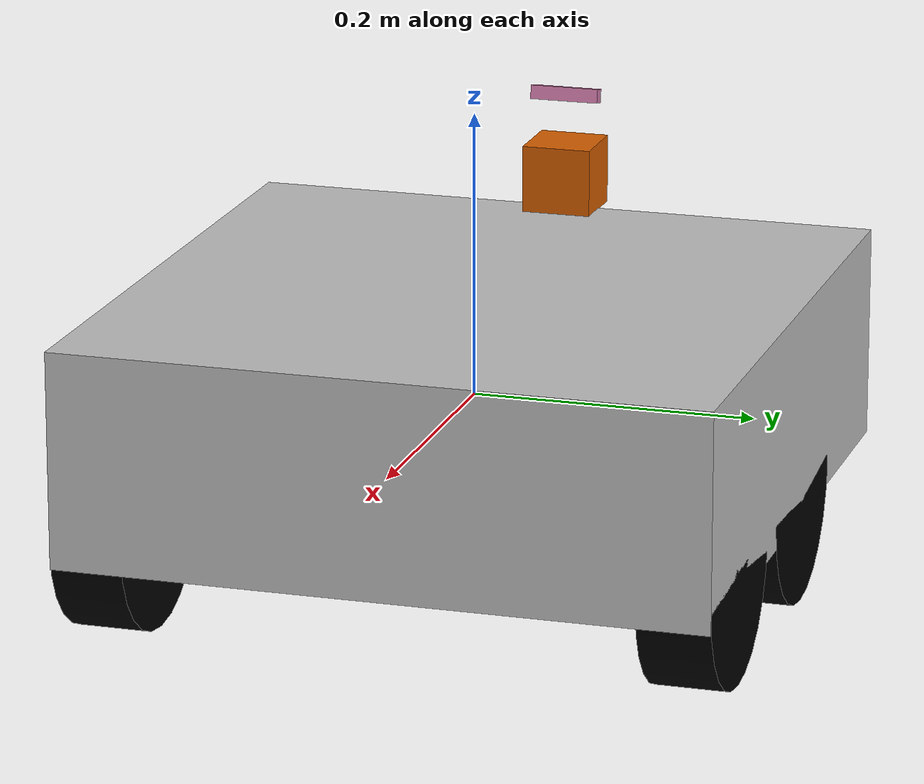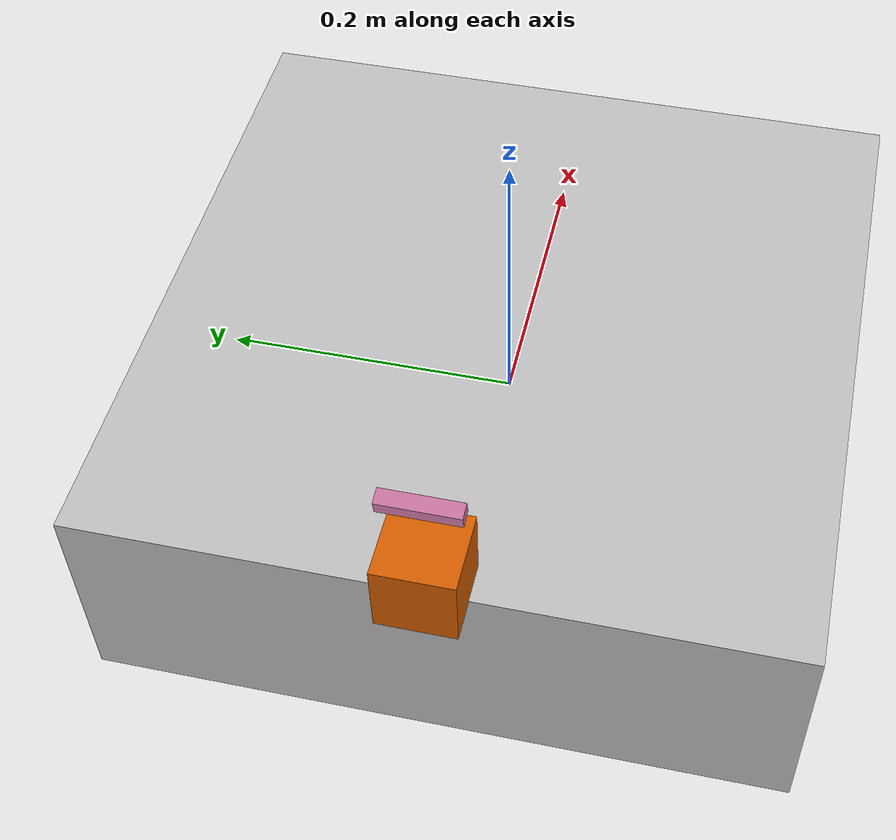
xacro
<?xml version="1.0" encoding="UTF-8"?>
<robot xmlns:xacro="http://www.ros.org/wiki/xacro" name="ansrr">

  <xacro:property name="box_x" value="0.4572"/>
  <xacro:property name="box_y" value="0.4572"/>
  <xacro:property name="box_z" value="0.1524"/>

  <xacro:property name="box_mass" value= "1"/>
  <xacro:property name="box_ixx" value= "0.01935"/>
  <xacro:property name="box_iyy" value= "0.01935"/>
  <xacro:property name="box_izz" value= "0.03483"/>

  <xacro:property name="length" value="0.0508"/>
  <xacro:property name="wheel_radius" value="0.0762"/>

  <xacro:property name="wheel_mass" value= "0.1"/>
  <xacro:property name="wheel_ixx" value= "5.685e-4"/>
  <xacro:property name="wheel_iyy" value= "5.685e-4"/>
  <xacro:property name="wheel_izz" value= "2.903e-4"/>

  <xacro:property name="front_x" value="-0.0254"/>
  <xacro:property name="rear_x" value="0.1524"/>
  <xacro:property name="wheel_y" value="0.2032"/>
  <xacro:property name="wheel_z" value="-0.06096"/>

  <xacro:macro name="geo_box">
    <geometry>
      <box size="${box_x} ${box_y} ${box_z}"/>
    </geometry>
  </xacro:macro>

  <xacro:macro name="inertia_macro" params="mass ixx iyy izz">
    <inertial>
      <mass value="${mass}"/>
      <inertia ixx="${ixx}" iyy="${iyy}" izz="${izz}" ixy="0" ixz="0" iyz="0"/>
    </inertial>
  </xacro:macro>

  <xacro:macro name="wheel" params="w_name x y z">
    <link name="${w_name}">
      <visual>
        <geometry>
          <cylinder length="${length}" radius="${wheel_radius}"/>
        </geometry>
        <material name="black">
          <color rgba="0 0 0 1"/>
        </material>
      </visual>
      <collision>
        <geometry>
          <cylinder length="${length}" radius="${wheel_radius}"/>
        </geometry>
      </collision>
      <xacro:inertia_macro mass="${wheel_mass}" ixx="${wheel_ixx}" iyy="${wheel_iyy}" izz="${wheel_izz}"/>
    </link>
    <joint name="base_to_${w_name}" type="continuous">
      <axis xyz="0 0 1"/>
      <parent link="base_link"/>
      <child link="${w_name}"/>
      <origin rpy="1.5708 0 0" xyz="${x} ${y} ${z}"/>
    </joint>
  </xacro:macro>

  <!-- Start of URDF-->
  <link name="base_link">
    <visual>
      <xacro:geo_box />
      <material name="silver">
        <color rgba="0.75 0.75 0.75 1"/>
      </material>
    </visual>
    <collision>
      <xacro:geo_box />
    </collision>
    <xacro:inertia_macro mass="1" ixx= "${box_ixx}" iyy="${box_iyy}" izz="${box_izz}"/>
  </link>
  <xacro:wheel w_name="left_front" x="${front_x}" y="-${wheel_y}" z="${wheel_z}"/>
  <xacro:wheel w_name="left_rear" x="${rear_x}" y="-${wheel_y}" z="${wheel_z}"/>
  <xacro:wheel w_name="right_front" x="${front_x}" y="${wheel_y}" z="${wheel_z}"/>
  <xacro:wheel w_name="right_rear" x="${rear_x}" y="${wheel_y}" z="${wheel_z}"/>

  <link name="fake_lidar">
    <visual>
      <geometry>
        <box size="0.05 0.05 0.05"/>
      </geometry>
    </visual>
    <collision>
      <geometry>
        <box size="0.05 0.05 0.05"/>
      </geometry>
    </collision>
    <xacro:inertia_macro mass="0.05" ixx="0.01" iyy="0.01" izz="0.01"/>
  </link>
  <joint name="base_to_fake_lidar" type="fixed">
    <axis xyz="0 0 1"/>
    <parent link="base_link"/>
    <child link="fake_lidar"/>
    <origin rpy="0 0 3.14" xyz="-.2286 0 0.1"/>
  </joint>

  <gazebo>
    <plugin name="differential_drive_controller" filename="libgazebo_ros_diff_drive.so">
      <leftJoint>base_to_left_rear</leftJoint>
      <rightJoint>base_to_right_rear</rightJoint>
      <robotBaseFrame>base_link</robotBaseFrame>
      <wheelSeparation>0.4064</wheelSeparation>
      <wheelDiameter>${wheel_radius*2}</wheelDiameter>
      <publishWheelJointState>true</publishWheelJointState>
    </plugin>
    <plugin name="differential_drive_controller_1" filename="libgazebo_ros_diff_drive.so">
      <leftJoint>base_to_left_front</leftJoint>
      <rightJoint>base_to_right_front</rightJoint>
      <robotBaseFrame>base_link</robotBaseFrame>
      <wheelSeparation>0.4064</wheelSeparation>
      <wheelDiameter>${wheel_radius*2}</wheelDiameter>
      <publishWheelJointState>true</publishWheelJointState>
    </plugin>

  </gazebo>
  <gazebo reference="fake_lidar">
    <sensor name="lds_lfcd_sensor" type="ray">
      <pose>0 0 0 0 0 0</pose>
      <visualize>0</visualize>
      <update_rate>40</update_rate>
      <ray>
        <scan>
          <horizontal>
            <samples>360</samples>
            <resolution>1</resolution>
            <min_angle>0</min_angle>
            <max_angle>6.28</max_angle>
          </horizontal>
        </scan>
        <range>
          <min>0.1</min>
          <max>10</max>
          <resolution>0.01</resolution>
        </range>
      </ray>
      <plugin name="gazebo_ros_lds_lfcd_controller  " filename="libgazebo_ros_laser.so">
        <topicName>/scan</topicName>
        <frameName>fake_lidar</frameName>
      </plugin>
    </sensor>
  </gazebo>

  <link name="fake_ultrasound">
    <visual>
      <geometry>
        <box size="0.01 0.05 0.01"/>
      </geometry>
    </visual>
    <collision>
      <geometry>
        <box size="0.05 0.05 0.05"/>
      </geometry>
    </collision>model
    <xacro:inertia_macro mass="0.05" ixx="0.01" iyy="0.01" izz="0.01"/>
  </link>
  <joint name="base_to_fake_ultrasound" type="fixed">
    <axis xyz="0 0 1"/>
    <parent link="base_link"/>
    <child link="fake_ultrasound"/>
    <origin rpy="0 0.2 3.14" xyz="-.2286 0 0.16"/>
  </joint>

  <gazebo reference="fake_ultrasound">
    <sensor name="us" type="ray">
      <pose>0 0 0 0 0 0</pose>
      <visualize>1</visualize>
      <update_rate>40</update_rate>
      <ray>
        <scan>
          <horizontal>
            <samples>4</samples>
            <resolution>4</resolution>
            <min_angle>-0.5235</min_angle>
            <max_angle>0.5235</max_angle>
          </horizontal>
        </scan>
        <range>
          <min>0.1</min>
          <max>1.3</max>
          <resolution>0.01</resolution>
        </range>
      </ray>
      <plugin name="gazebo_ros_us_lfcd_controller  " filename="libgazebo_ros_laser.so">
        <topicName>us_scan</topicName>
        <frameName>fake_ultrasound</frameName>
      </plugin>
    </sensor>
  </gazebo>

</robot>
